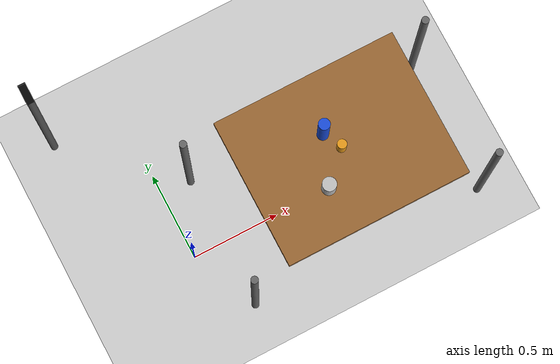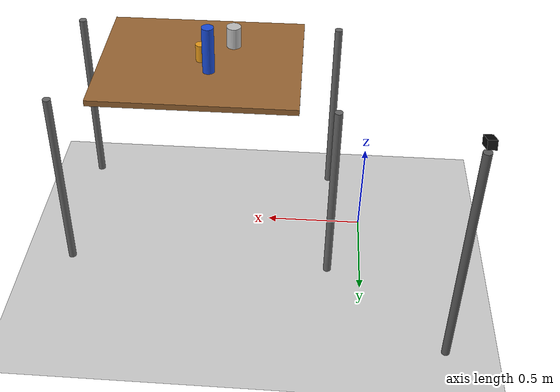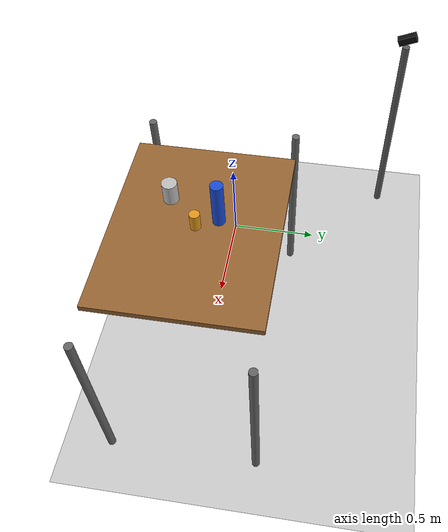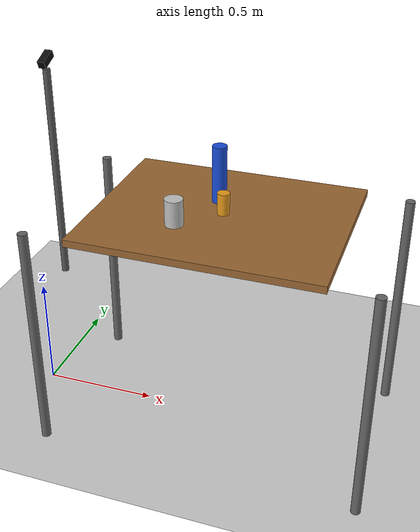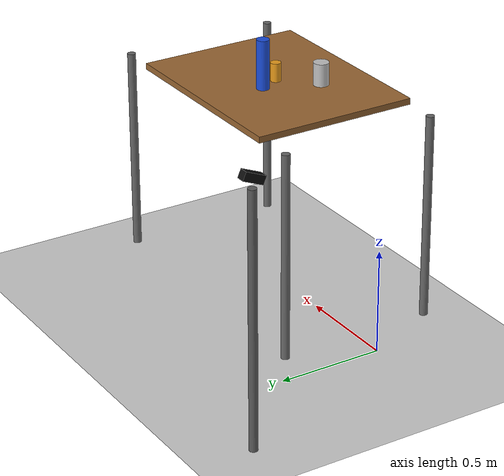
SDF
<?xml version="1.0" ?>
<!-- Ignition Fortress world for UR10 + Robotiq 3F simulation.
     {CONTROLLERS_YAML} is substituted at launch time with the absolute path
     to ur10_3f_controllers.yaml. -->
<sdf version="1.8">
  <world name="ur10_pick_place">

    <!-- Physics -->
    <physics name="1ms" type="ignored">
      <max_step_size>0.001</max_step_size>
      <real_time_factor>1.0</real_time_factor>
      <real_time_update_rate>1000</real_time_update_rate>
    </physics>

    <!-- Required Ignition Gazebo plugins -->
    <plugin filename="libignition-gazebo-physics-system.so"
            name="ignition::gazebo::systems::Physics"/>
    <plugin filename="libignition-gazebo-user-commands-system.so"
            name="ignition::gazebo::systems::UserCommands"/>
    <plugin filename="libignition-gazebo-scene-broadcaster-system.so"
            name="ignition::gazebo::systems::SceneBroadcaster"/>
    <plugin filename="libignition-gazebo-sensors-system.so"
            name="ignition::gazebo::systems::Sensors">
      <render_engine>ogre2</render_engine>
    </plugin>

    <!-- Lighting -->
    <light name="sun" type="directional">
      <cast_shadows>true</cast_shadows>
      <pose>0 0 10 0 0 0</pose>
      <diffuse>0.8 0.8 0.8 1</diffuse>
      <specular>0.2 0.2 0.2 1</specular>
      <attenuation>
        <range>1000</range>
        <constant>0.9</constant>
        <linear>0.01</linear>
        <quadratic>0.001</quadratic>
      </attenuation>
      <direction>-0.5 0.1 -0.9</direction>
    </light>

    <!-- Ground plane -->
    <model name="ground_plane">
      <static>true</static>
      <link name="link">
        <collision name="collision">
          <geometry>
            <plane>
              <normal>0 0 1</normal>
              <size>100 100</size>
            </plane>
          </geometry>
        </collision>
        <visual name="visual">
          <geometry>
            <plane>
              <normal>0 0 1</normal>
              <size>100 100</size>
            </plane>
          </geometry>
          <material>
            <ambient>0.8 0.8 0.8 1</ambient>
            <diffuse>0.8 0.8 0.8 1</diffuse>
            <specular>0.8 0.8 0.8 1</specular>
          </material>
        </visual>
      </link>
    </model>

    <!-- Table for pick-and-place -->
    <!-- Table centre x=0.85, width 1.0 m → left edge x=0.35 (35 cm from robot) -->
    <model name="table">
      <static>true</static>
      <pose>0.85 0 0 0 0 0</pose>
      <link name="link">
        <!-- Table top -->
        <collision name="surface">
          <pose>0 0 1 0 0 0</pose>
          <geometry>
            <box><size>1.0 0.8 0.03</size></box>
          </geometry>
        </collision>
        <visual name="visual_surface">
          <pose>0 0 1 0 0 0</pose>
          <geometry>
            <box><size>1.0 0.8 0.03</size></box>
          </geometry>
          <material>
            <ambient>0.6 0.4 0.2 1</ambient>
            <diffuse>0.6 0.4 0.2 1</diffuse>
          </material>
        </visual>
        <!-- Table legs -->
        <collision name="leg_fl">
          <pose>0.68 0.38 0.5 0 0 0</pose>
          <geometry><cylinder><radius>0.02</radius><length>1.0</length></cylinder></geometry>
        </collision>
        <visual name="visual_leg_fl">
          <pose>0.68 0.38 0.5 0 0 0</pose>
          <geometry><cylinder><radius>0.02</radius><length>1.0</length></cylinder></geometry>
          <material><ambient>0.4 0.4 0.4 1</ambient><diffuse>0.4 0.4 0.4 1</diffuse></material>
        </visual>
        <collision name="leg_fr">
          <pose>0.68 -0.38 0.5 0 0 0</pose>
          <geometry><cylinder><radius>0.02</radius><length>1.0</length></cylinder></geometry>
        </collision>
        <visual name="visual_leg_fr">
          <pose>0.68 -0.38 0.5 0 0 0</pose>
          <geometry><cylinder><radius>0.02</radius><length>1.0</length></cylinder></geometry>
          <material><ambient>0.4 0.4 0.4 1</ambient><diffuse>0.4 0.4 0.4 1</diffuse></material>
        </visual>
        <collision name="leg_bl">
          <pose>-0.68 0.38 0.5 0 0 0</pose>
          <geometry><cylinder><radius>0.02</radius><length>1.0</length></cylinder></geometry>
        </collision>
        <visual name="visual_leg_bl">
          <pose>-0.68 0.38 0.5 0 0 0</pose>
          <geometry><cylinder><radius>0.02</radius><length>1.0</length></cylinder></geometry>
          <material><ambient>0.4 0.4 0.4 1</ambient><diffuse>0.4 0.4 0.4 1</diffuse></material>
        </visual>
        <collision name="leg_br">
          <pose>-0.68 -0.38 0.5 0 0 0</pose>
          <geometry><cylinder><radius>0.02</radius><length>1.0</length></cylinder></geometry>
        </collision>
        <visual name="visual_leg_br">
          <pose>-0.68 -0.38 0.5 0 0 0</pose>
          <geometry><cylinder><radius>0.02</radius><length>1.0</length></cylinder></geometry>
          <material><ambient>0.4 0.4 0.4 1</ambient><diffuse>0.4 0.4 0.4 1</diffuse></material>
        </visual>
      </link>
    </model>

    <!-- GraspGen-compatible pick objects (cylinder primitives).      -->
    <!-- Dimensions match real-world object sizes for the 8 trained   -->
    <!-- GraspGen objects. Table top surface is at z=1.015.           -->

    <!-- tin_can: ~74mm dia, 110mm tall. object_scale=0.0465 -->
    <model name="tin_can">
      <pose>0.70 -0.15 1.070 0 0 0</pose>  <!-- tin_can -->
      <link name="link">
        <inertial>
          <mass>0.2</mass>
          <inertia><ixx>0.0003</ixx><iyy>0.0003</iyy><izz>0.0001</izz></inertia>
        </inertial>
        <collision name="collision">
          <geometry><cylinder><radius>0.037</radius><length>0.110</length></cylinder></geometry>
        </collision>
        <visual name="visual">
          <geometry><cylinder><radius>0.037</radius><length>0.110</length></cylinder></geometry>
          <material>
            <ambient>0.75 0.75 0.75 1</ambient>
            <diffuse>0.75 0.75 0.75 1</diffuse>
          </material>
        </visual>
      </link>
    </model>

    <!-- bottle_large: ~60mm dia, 240mm tall. object_scale=0.0572 -->
    <model name="bottle_large">
      <pose>0.80 0.10 1.135 0 0 0</pose>
      <link name="link">
        <inertial>
          <mass>0.3</mass>
          <inertia><ixx>0.002</ixx><iyy>0.002</iyy><izz>0.0002</izz></inertia>
        </inertial>
        <collision name="collision">
          <geometry><cylinder><radius>0.030</radius><length>0.240</length></cylinder></geometry>
        </collision>
        <visual name="visual">
          <geometry><cylinder><radius>0.030</radius><length>0.240</length></cylinder></geometry>
          <material>
            <ambient>0.1 0.3 0.85 1</ambient>
            <diffuse>0.1 0.3 0.85 1</diffuse>
          </material>
        </visual>
      </link>
    </model>

    <!-- boba_tea_cup: ~50mm dia, 90mm tall. object_scale=0.0123 -->
    <model name="boba_tea_cup">
      <pose>0.85 0.0 1.060 0 0 0</pose>
      <link name="link">
        <inertial>
          <mass>0.1</mass>
          <inertia><ixx>0.00005</ixx><iyy>0.00005</iyy><izz>0.00003</izz></inertia>
        </inertial>
        <collision name="collision">
          <geometry><cylinder><radius>0.025</radius><length>0.090</length></cylinder></geometry>
        </collision>
        <visual name="visual">
          <geometry><cylinder><radius>0.025</radius><length>0.090</length></cylinder></geometry>
          <material>
            <ambient>0.9 0.6 0.1 1</ambient>
            <diffuse>0.9 0.6 0.1 1</diffuse>
          </material>
        </visual>
      </link>
    </model>

    <!-- OAK-D Pro camera on tripod                                   -->
    <!-- Static model, angled to view the table workspace             -->
    <!-- Camera at ~1.25 m height, positioned beside the table        -->
    <model name="oakd_pro_tripod">
      <static>true</static>

      <!-- Tripod stand centered at (-0.4, 0.9, 0) -->
      <link name="tripod_stand">
        <pose>-0.4 0.9 0.6 0 0 0</pose>
        <visual name="stand_visual">
          <geometry><cylinder><radius>0.02</radius><length>1.2</length></cylinder></geometry>
          <material><ambient>0.35 0.35 0.35 1</ambient><diffuse>0.35 0.35 0.35 1</diffuse></material>
        </visual>
        <collision name="stand_collision">
          <geometry><cylinder><radius>0.02</radius><length>1.2</length></cylinder></geometry>
        </collision>
      </link>

      <!-- Camera head at 1.25 m, pitched down 23° and yawed to face table -->
      <link name="camera_link">
        <pose>-0.4 0.9 1.25 0 0.4 -1.5708</pose>
        <visual name="camera_body">
          <geometry><box><size>0.10 0.04 0.04</size></box></geometry>
          <material><ambient>0.05 0.05 0.05 1</ambient><diffuse>0.05 0.05 0.05 1</diffuse></material>
        </visual>
        <collision name="camera_collision">
          <geometry><box><size>0.10 0.04 0.04</size></box></geometry>
        </collision>
        <sensor name="oakd_pro" type="rgbd_camera">
          <camera>
            <horizontal_fov>1.20</horizontal_fov>
            <image>
              <width>640</width>
              <height>400</height>
              <format>R8G8B8</format>
            </image>
            <clip>
              <near>0.2</near>
              <far>8.0</far>
            </clip>
          </camera>
          <always_on>1</always_on>
          <update_rate>15</update_rate>
          <visualize>true</visualize>
          <topic>oakd_pro</topic>
        </sensor>
      </link>

      <joint name="stand_to_camera" type="fixed">
        <parent>tripod_stand</parent>
        <child>camera_link</child>
      </joint>
    </model>

  </world>
</sdf>
